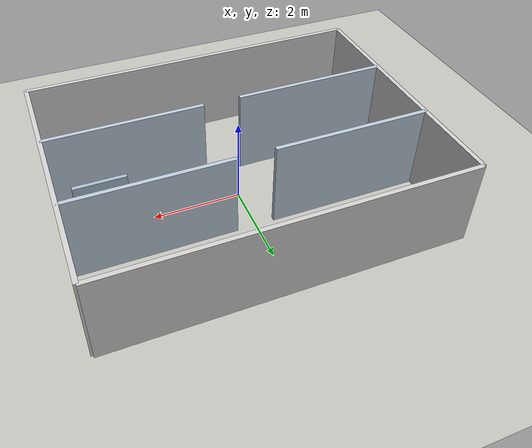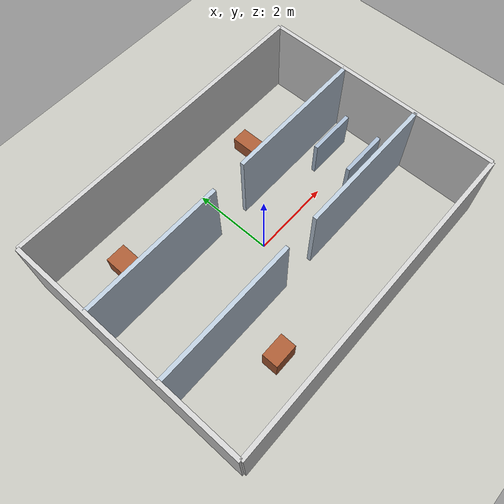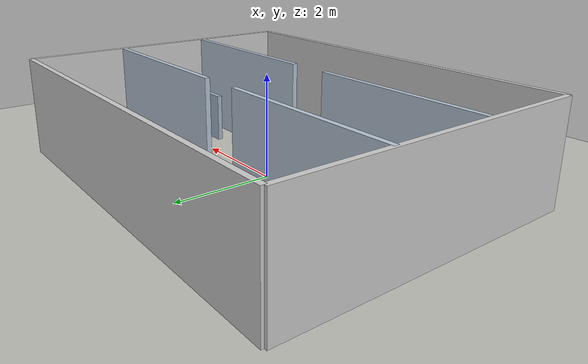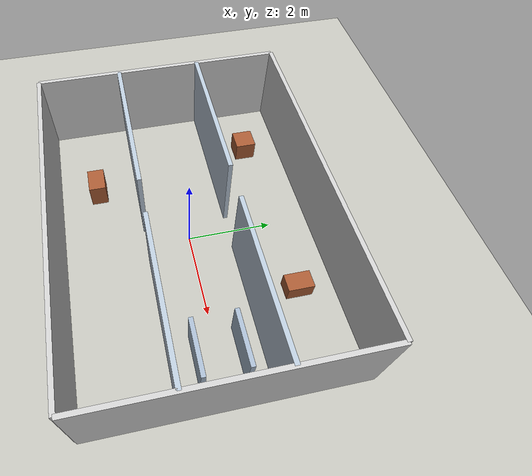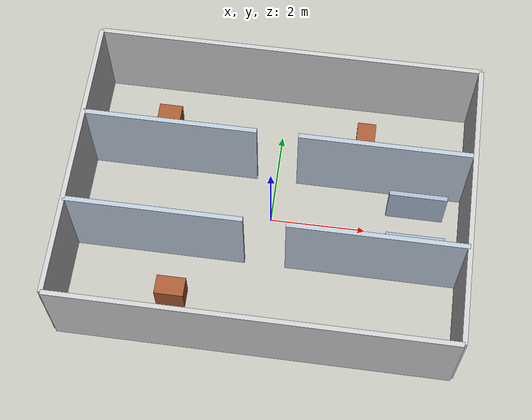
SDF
<?xml version="1.0"?>
<sdf version="1.6">
  <world name="office_test">
    <gravity>0 0 -9.8</gravity>
    <physics name="default_physics" type="ode">
      <max_step_size>0.001</max_step_size>
      <real_time_update_rate>1000.0</real_time_update_rate>
    </physics>

    <scene>
      <ambient>0.5 0.5 0.5 1</ambient>
      <background>0.75 0.8 0.85 1</background>
      <shadows>true</shadows>
    </scene>

    <light name="sun" type="directional">
      <pose>0 0 10 0 0 0</pose>
      <diffuse>0.9 0.9 0.9 1</diffuse>
      <specular>0.2 0.2 0.2 1</specular>
      <direction>-0.5 0.1 -0.9</direction>
    </light>

    <model name="ground_plane">
      <static>true</static>
      <link name="link">
        <collision name="collision">
          <geometry>
            <plane><normal>0 0 1</normal><size>8 6</size></plane>
          </geometry>
        </collision>
        <visual name="visual">
          <geometry>
            <plane><normal>0 0 1</normal><size>8 6</size></plane>
          </geometry>
          <material>
            <ambient>0.75 0.75 0.72 1</ambient>
            <diffuse>0.75 0.75 0.72 1</diffuse>
          </material>
        </visual>
      </link>
    </model>

    <model name="wall_north">
      <static>true</static>
      <pose>0 3 1 0 0 0</pose>
      <link name="link">
        <collision name="collision">
          <geometry><box><size>8 0.1 2</size></box></geometry>
        </collision>
        <visual name="visual">
          <geometry><box><size>8 0.1 2</size></box></geometry>
          <material><ambient>0.8 0.8 0.8 1</ambient></material>
        </visual>
      </link>
    </model>

    <model name="wall_south">
      <static>true</static>
      <pose>0 -3 1 0 0 0</pose>
      <link name="link">
        <collision name="collision">
          <geometry><box><size>8 0.1 2</size></box></geometry>
        </collision>
        <visual name="visual">
          <geometry><box><size>8 0.1 2</size></box></geometry>
          <material><ambient>0.8 0.8 0.8 1</ambient></material>
        </visual>
      </link>
    </model>

    <model name="wall_west">
      <static>true</static>
      <pose>-4 0 1 0 0 0</pose>
      <link name="link">
        <collision name="collision">
          <geometry><box><size>0.1 6 2</size></box></geometry>
        </collision>
        <visual name="visual">
          <geometry><box><size>0.1 6 2</size></box></geometry>
          <material><ambient>0.8 0.8 0.8 1</ambient></material>
        </visual>
      </link>
    </model>

    <model name="wall_east">
      <static>true</static>
      <pose>4 0 1 0 0 0</pose>
      <link name="link">
        <collision name="collision">
          <geometry><box><size>0.1 6 2</size></box></geometry>
        </collision>
        <visual name="visual">
          <geometry><box><size>0.1 6 2</size></box></geometry>
          <material><ambient>0.8 0.8 0.8 1</ambient></material>
        </visual>
      </link>
    </model>

    <!-- Two wall pairs form north/south rooms and leave 0.85 m doors. -->
    <model name="north_room_wall_west">
      <static>true</static>
      <pose>-2.2125 1.0 1 0 0 0</pose>
      <link name="link">
        <collision name="collision">
          <geometry><box><size>3.575 0.1 2</size></box></geometry>
        </collision>
        <visual name="visual">
          <geometry><box><size>3.575 0.1 2</size></box></geometry>
          <material><ambient>0.72 0.78 0.84 1</ambient></material>
        </visual>
      </link>
    </model>

    <model name="north_room_wall_east">
      <static>true</static>
      <pose>2.2125 1.0 1 0 0 0</pose>
      <link name="link">
        <collision name="collision">
          <geometry><box><size>3.575 0.1 2</size></box></geometry>
        </collision>
        <visual name="visual">
          <geometry><box><size>3.575 0.1 2</size></box></geometry>
          <material><ambient>0.72 0.78 0.84 1</ambient></material>
        </visual>
      </link>
    </model>

    <model name="south_room_wall_west">
      <static>true</static>
      <pose>-2.2125 -1.0 1 0 0 0</pose>
      <link name="link">
        <collision name="collision">
          <geometry><box><size>3.575 0.1 2</size></box></geometry>
        </collision>
        <visual name="visual">
          <geometry><box><size>3.575 0.1 2</size></box></geometry>
          <material><ambient>0.72 0.78 0.84 1</ambient></material>
        </visual>
      </link>
    </model>

    <model name="south_room_wall_east">
      <static>true</static>
      <pose>2.2125 -1.0 1 0 0 0</pose>
      <link name="link">
        <collision name="collision">
          <geometry><box><size>3.575 0.1 2</size></box></geometry>
        </collision>
        <visual name="visual">
          <geometry><box><size>3.575 0.1 2</size></box></geometry>
          <material><ambient>0.72 0.78 0.84 1</ambient></material>
        </visual>
      </link>
    </model>

    <!-- Parallel walls leave a measured 0.85 m clear narrow passage. -->
    <model name="narrow_passage_north">
      <static>true</static>
      <pose>3.0 0.475 0.5 0 0 0</pose>
      <link name="link">
        <collision name="collision">
          <geometry><box><size>1.2 0.1 1.0</size></box></geometry>
        </collision>
        <visual name="visual">
          <geometry><box><size>1.2 0.1 1.0</size></box></geometry>
          <material><ambient>0.65 0.72 0.8 1</ambient></material>
        </visual>
      </link>
    </model>

    <model name="narrow_passage_south">
      <static>true</static>
      <pose>3.0 -0.475 0.5 0 0 0</pose>
      <link name="link">
        <collision name="collision">
          <geometry><box><size>1.2 0.1 1.0</size></box></geometry>
        </collision>
        <visual name="visual">
          <geometry><box><size>1.2 0.1 1.0</size></box></geometry>
          <material><ambient>0.65 0.72 0.8 1</ambient></material>
        </visual>
      </link>
    </model>

    <model name="obstacle_1">
      <static>true</static>
      <pose>-2.5 2.0 0.25 0 0 0</pose>
      <link name="link">
        <collision name="collision">
          <geometry><box><size>0.5 0.5 0.5</size></box></geometry>
        </collision>
        <visual name="visual">
          <geometry><box><size>0.5 0.5 0.5</size></box></geometry>
          <material><ambient>0.65 0.35 0.2 1</ambient></material>
        </visual>
      </link>
    </model>

    <model name="obstacle_2">
      <static>true</static>
      <pose>1.8 2.1 0.2 0 0 0</pose>
      <link name="link">
        <collision name="collision">
          <geometry><box><size>0.4 0.6 0.4</size></box></geometry>
        </collision>
        <visual name="visual">
          <geometry><box><size>0.4 0.6 0.4</size></box></geometry>
          <material><ambient>0.65 0.35 0.2 1</ambient></material>
        </visual>
      </link>
    </model>

    <model name="obstacle_3">
      <static>true</static>
      <pose>-1.8 -2.0 0.3 0 0 0</pose>
      <link name="link">
        <collision name="collision">
          <geometry><box><size>0.6 0.4 0.6</size></box></geometry>
        </collision>
        <visual name="visual">
          <geometry><box><size>0.6 0.4 0.6</size></box></geometry>
          <material><ambient>0.65 0.35 0.2 1</ambient></material>
        </visual>
      </link>
    </model>
  </world>
</sdf>
